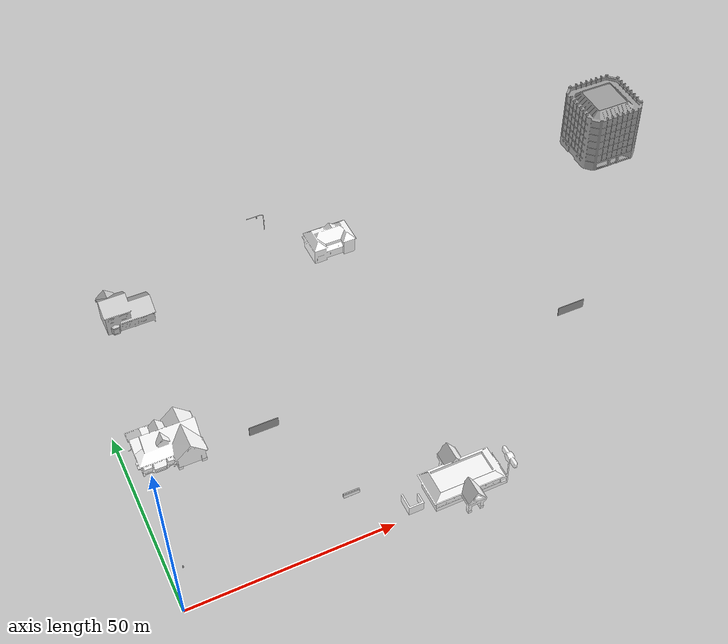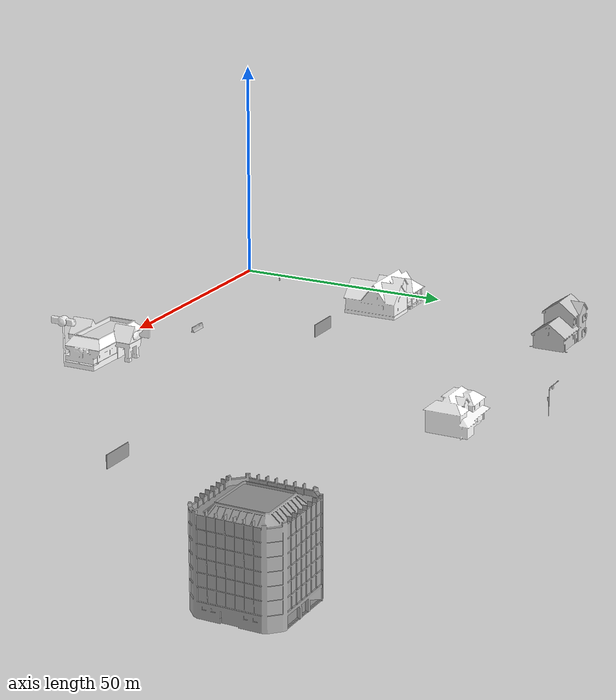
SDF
<sdf version="1.4">
 <world name="default">
  <scene>
   <ambient>0.68 0.68 0.68 1.0</ambient>
   <shadows>false</shadows>
   <sky><clouds><speed>12</speed></clouds></sky>
   <light name="sun" type="point">
    <pose>10 10 3 0 -0 0</pose>
    <diffuse>0.8 0.8 0.8 1</diffuse>
    <specular>0.2 0.2 0.2 1</specular>
    <attenuation>
     <range>100000</range>
     <constant>0.9</constant>
     <linear>0.01</linear>
     <quadratic>0.001</quadratic>
    </attenuation>
   </light>
  </scene>
  <physics type="ode">
   <max_step_size>0.001</max_step_size>
   <real_time_factor>1</real_time_factor>
   <real_time_update_rate>1000</real_time_update_rate>
   <gravity>0 0 -9.8</gravity>
  </physics>
  <include><uri>model://sun</uri></include>
  <model name="House 1">
   <static>1</static>
   <link name="link">
    <collision name="collision">
     <geometry><mesh><uri>model://house_1/meshes/house_1.dae</uri><scale>1.5 1.5 1.5</scale></mesh></geometry>
    </collision>
    <visual name="visual">
     <geometry><mesh><uri>model://house_1/meshes/house_1.dae</uri><scale>1.5 1.5 1.5</scale></mesh></geometry>
     <material>
      <script>
       <uri>model://house_1/materials/scripts</uri>
       <uri>model://house_1/materials/textures</uri>
       <name>House_1/Diffuse</name>
      </script>
      <shader type="normal_map_tangent_space"><normal_map>House_1_Normal.png</normal_map></shader>
     </material>
    </visual>
   </link>
   <pose>11.0396 41.6722 0 0 -0 0</pose>
  </model>
  <model name="House 2">
   <static>1</static>
   <link name="link">
    <collision name="collision">
     <geometry><mesh><uri>model://house_2/meshes/house_2.dae</uri><scale>1.5 1.5 1.5</scale></mesh></geometry>
    </collision>
    <visual name="visual">
     <geometry><mesh><uri>model://house_2/meshes/house_2.dae</uri><scale>1.5 1.5 1.5</scale></mesh></geometry>
     <material>
      <script>
       <uri>model://house_2/materials/scripts</uri>
       <uri>model://house_2/materials/textures</uri>
       <uri>model://house_1/materials/textures</uri>
       <name>House_2/Diffuse</name>
      </script>
      <shader type="normal_map_tangent_space">
       <normal_map>model://house_1/materials/textures/House_1_Normal.png</normal_map>
      </shader>
     </material>
    </visual>
   </link>
   <pose>71.5973 86.5602 0 0 -0 0</pose>
  </model>
  <model name="House 3">
   <static>1</static>
   <link name="link">
    <collision name="collision">
     <geometry><mesh><uri>model://house_3/meshes/house_3.dae</uri><scale>1.5 1.5 1.5</scale></mesh></geometry>
    </collision>
    <visual name="visual">
     <geometry><mesh><uri>model://house_3/meshes/house_3.dae</uri><scale>1.5 1.5 1.5</scale></mesh></geometry>
     <material>
      <script>
       <uri>model://house_3/materials/scripts</uri>
       <uri>model://house_3/materials/textures</uri>
       <uri>model://house_1/materials/textures</uri>
       <name>House_3/Diffuse</name>
      </script>
      <shader type="normal_map_tangent_space">
       <normal_map>model://house_1/materials/textures/House_1_Normal.png</normal_map>
      </shader>
     </material>
    </visual>
   </link>
   <pose>15.8245 85.7301 0 0 -0 0</pose>
  </model>
  <model name="Office Building">
   <static>1</static>
   <link name="link">
    <collision name="collision">
     <geometry><mesh><uri>model://office_building/meshes/office_building.dae</uri></mesh></geometry>
    </collision>
    <visual name="visual">
     <geometry><mesh><uri>model://office_building/meshes/office_building.dae</uri></mesh></geometry>
    </visual>
   </link>
   <pose>160.478 91.1206 0 0 -0 0</pose>
  </model>
  <model name="stop_light_post">
   <static>1</static>
   <link name="link">
    <collision name="post">
     <geometry>
      <mesh><uri>model://stop_light_post/meshes/stop_light_post.obj</uri><scale>0.01 0.01 0.01</scale></mesh>
     </geometry>
    </collision>
    <visual name="post">
     <geometry>
      <mesh><uri>model://stop_light_post/meshes/stop_light_post.obj</uri><scale>0.01 0.01 0.01</scale></mesh>
     </geometry>
    </visual>
   </link>
   <frame name="right_light::__model__" attached_to="right_light::link">
    <pose relative_to="__model__">0 -0.05 4 0 -0 0</pose>
   </frame>
   <static>1</static>
   <link name="right_light::link">
    <collision name="collision">
     <geometry>
      <mesh><uri>model://stop_light/meshes/stop_light.obj</uri><scale>0.01 0.01 0.01</scale></mesh>
     </geometry>
    </collision>
    <visual name="frame">
     <geometry>
      <mesh><uri>model://stop_light/meshes/stop_light.obj</uri><scale>0.01 0.01 0.01</scale></mesh>
     </geometry>
    </visual>
    <visual name="red">
     <pose>-0.001123 -0.082251 -0.147514 0 -0 0</pose>
     <geometry><sphere><radius>0.1012</radius></sphere></geometry>
     <material>
      <script>
       <uri>model://stop_light/materials/scripts/</uri>
       <uri>model://stop_light/materials/textures/</uri>
       <name>StopLight/Light</name>
      </script>
      <ambient>1 0 0 1</ambient>
      <specular>1 0 0 1</specular>
     </material>
    </visual>
    <visual name="yellow">
     <pose>-0.001123 -0.082251 -0.402 0 -0 0</pose>
     <geometry><sphere><radius>0.1012</radius></sphere></geometry>
     <material>
      <script>
       <uri>model://stop_light/materials/scripts/</uri>
       <uri>model://stop_light/materials/textures/</uri>
       <name>StopLight/Light</name>
      </script>
      <ambient>1 1 0 1</ambient>
      <specular>1 1 0 1</specular>
     </material>
    </visual>
    <visual name="green">
     <pose>-0.001123 -0.082251 -0.655 0 -0 0</pose>
     <geometry><sphere><radius>0.1012</radius></sphere></geometry>
     <material>
      <script>
       <uri>model://stop_light/materials/scripts/</uri>
       <uri>model://stop_light/materials/textures/</uri>
       <name>StopLight/Light</name>
      </script>
      <ambient>0 1 0 1</ambient>
      <specular>0 1 0 1</specular>
     </material>
    </visual>
    <pose relative_to="right_light::__model__">0 0 0 0 -0 0</pose>
   </link>
   <frame name="center_light::__model__" attached_to="center_light::link">
    <pose relative_to="__model__">-2 0.04 5.82 0 -0 0</pose>
   </frame>
   <static>1</static>
   <link name="center_light::link">
    <collision name="collision">
     <geometry>
      <mesh><uri>model://stop_light/meshes/stop_light.obj</uri><scale>0.01 0.01 0.01</scale></mesh>
     </geometry>
    </collision>
    <visual name="frame">
     <geometry>
      <mesh><uri>model://stop_light/meshes/stop_light.obj</uri><scale>0.01 0.01 0.01</scale></mesh>
     </geometry>
    </visual>
    <visual name="red">
     <pose>-0.001123 -0.082251 -0.147514 0 -0 0</pose>
     <geometry><sphere><radius>0.1012</radius></sphere></geometry>
     <material>
      <script>
       <uri>model://stop_light/materials/scripts/</uri>
       <uri>model://stop_light/materials/textures/</uri>
       <name>StopLight/Light</name>
      </script>
      <ambient>1 0 0 1</ambient>
      <specular>1 0 0 1</specular>
     </material>
    </visual>
    <visual name="yellow">
     <pose>-0.001123 -0.082251 -0.402 0 -0 0</pose>
     <geometry><sphere><radius>0.1012</radius></sphere></geometry>
     <material>
      <script>
       <uri>model://stop_light/materials/scripts/</uri>
       <uri>model://stop_light/materials/textures/</uri>
       <name>StopLight/Light</name>
      </script>
      <ambient>1 1 0 1</ambient>
      <specular>1 1 0 1</specular>
     </material>
    </visual>
    <visual name="green">
     <pose>-0.001123 -0.082251 -0.655 0 -0 0</pose>
     <geometry><sphere><radius>0.1012</radius></sphere></geometry>
     <material>
      <script>
       <uri>model://stop_light/materials/scripts/</uri>
       <uri>model://stop_light/materials/textures/</uri>
       <name>StopLight/Light</name>
      </script>
      <ambient>0 1 0 1</ambient>
      <specular>0 1 0 1</specular>
     </material>
    </visual>
    <pose relative_to="center_light::__model__">0 0 0 0 -0 0</pose>
   </link>
   <pose>59.2726 100.838 0 0 -0 0</pose>
  </model>
  <model name="Fast Food">
   <static>1</static>
   <link name="link">
    <pose>0 0 3.15931 0 -0 0</pose>
    <collision name="collision">
     <geometry><mesh><scale>3 3 2</scale><uri>model://fast_food/meshes/fast_food.dae</uri></mesh></geometry>
    </collision>
    <visual name="visual">
     <geometry><mesh><scale>3 3 2</scale><uri>model://fast_food/meshes/fast_food.dae</uri></mesh></geometry>
     <material>
      <script>
       <uri>model://fast_food/materials/scripts</uri>
       <uri>model://fast_food/materials/textures</uri>
       <name>FastFood/Diffuse</name>
      </script>
      <shader type="normal_map_tangent_space"><normal_map>FastFood_Normal.png</normal_map></shader>
     </material>
    </visual>
   </link>
   <pose>68.1437 2.67778 0 0 -0 0</pose>
  </model>
  <model name="fire_hydrant">
   <static>1</static>
   <link name="link">
    <collision name="collision">
     <geometry><mesh><uri>model://fire_hydrant/meshes/fire_hydrant.dae</uri></mesh></geometry>
    </collision>
    <visual name="visual">
     <geometry><mesh><uri>model://fire_hydrant/meshes/fire_hydrant.dae</uri></mesh></geometry>
    </visual>
   </link>
   <pose>3.55417 10.1181 0 0 -0 0</pose>
  </model>
  <model name="jersey_barrier">
   <static>1</static>
   <link name="link">
    <visual name="visual">
     <geometry><mesh><uri>model://jersey_barrier/meshes/jersey_barrier.dae</uri></mesh></geometry>
    </visual>
    <collision name="upright">
     <pose>0 0 0.5715 0 -0 0</pose>
     <geometry><box><size>4.06542 0.3063 1.143</size></box></geometry>
    </collision>
    <collision name="base">
     <pose>0 0 0.032258 0 -0 0</pose>
     <geometry><box><size>4.06542 0.8107 0.064516</size></box></geometry>
    </collision>
    <collision name="base2">
     <pose>0 0 0.1 0 -0 0</pose>
     <geometry><box><size>4.06542 0.65 0.1</size></box></geometry>
    </collision>
    <collision name="base3">
     <pose>0 0 0.2 0 -0 0</pose>
     <geometry><box><size>4.06542 0.5 0.1</size></box></geometry>
    </collision>
    <collision name="left-angle">
     <pose>0 -0.224 0.2401 0.9 -0 0</pose>
     <geometry><box><size>4.06542 0.5 0.064516</size></box></geometry>
    </collision>
    <collision name="right-angle">
     <pose>0 0.224 0.2401 -0.9 0 0</pose>
     <geometry><box><size>4.06542 0.5 0.064516</size></box></geometry>
    </collision>
   </link>
   <pose>44.6261 11.6509 0 0 -0 0</pose>
  </model>
  <model name="grey_wall">
   <static>1</static>
   <link name="link">
    <pose>0 0 1.4 0 -0 0</pose>
    <collision name="collision"><geometry><box><size>7.5 0.2 2.8</size></box></geometry></collision>
    <visual name="visual">
     <cast_shadows>0</cast_shadows>
     <geometry><box><size>7.5 0.2 2.8</size></box></geometry>
     <material>
      <script>
       <uri>model://grey_wall/materials/scripts</uri>
       <uri>model://grey_wall/materials/textures</uri>
       <name>vrc/grey_wall</name>
      </script>
     </material>
    </visual>
   </link>
   <pose>33.4881 37.1432 0 0 -0 0</pose>
  </model>
  <model name="grey_wall_0">
   <static>1</static>
   <link name="link">
    <pose>0 0 1.4 0 -0 0</pose>
    <collision name="collision"><geometry><box><size>7.5 0.2 2.8</size></box></geometry></collision>
    <visual name="visual">
     <cast_shadows>0</cast_shadows>
     <geometry><box><size>7.5 0.2 2.8</size></box></geometry>
     <material>
      <script>
       <uri>model://grey_wall/materials/scripts</uri>
       <uri>model://grey_wall/materials/textures</uri>
       <name>vrc/grey_wall</name>
      </script>
     </material>
    </visual>
   </link>
   <pose>119.27 38.4661 0 0 -0 0</pose>
  </model>
 </world>
</sdf>
